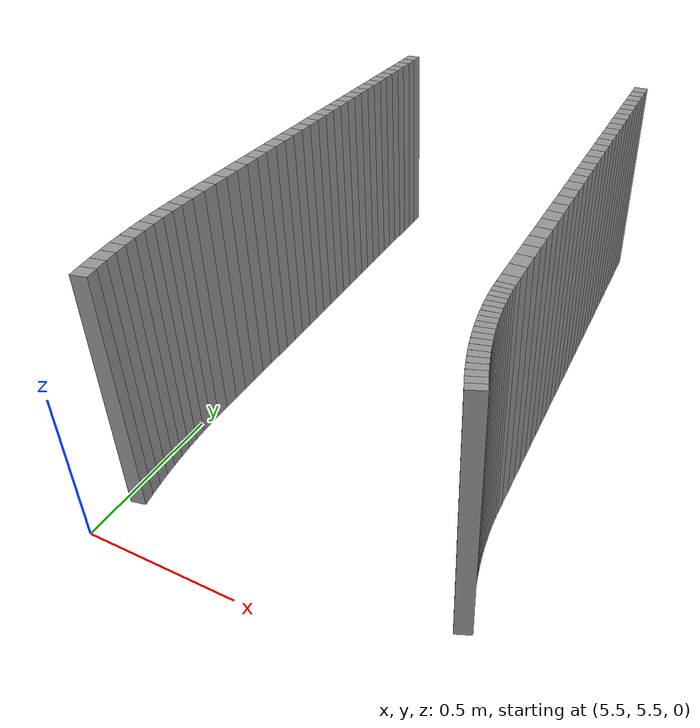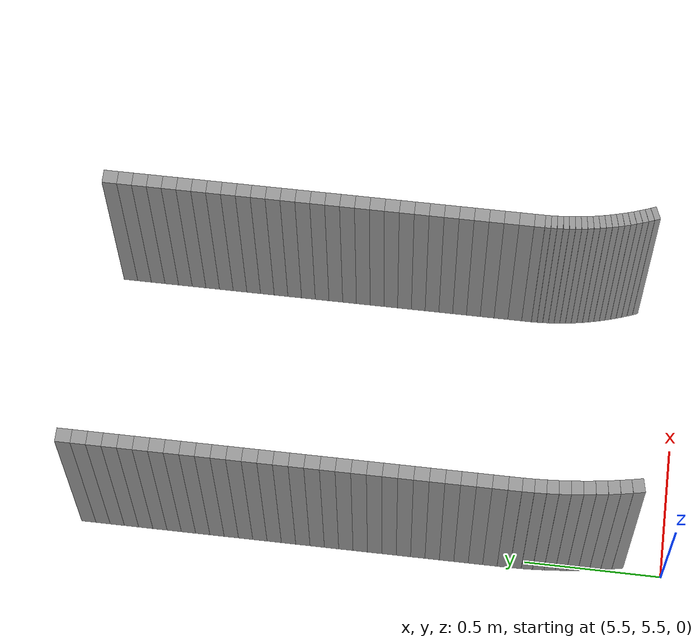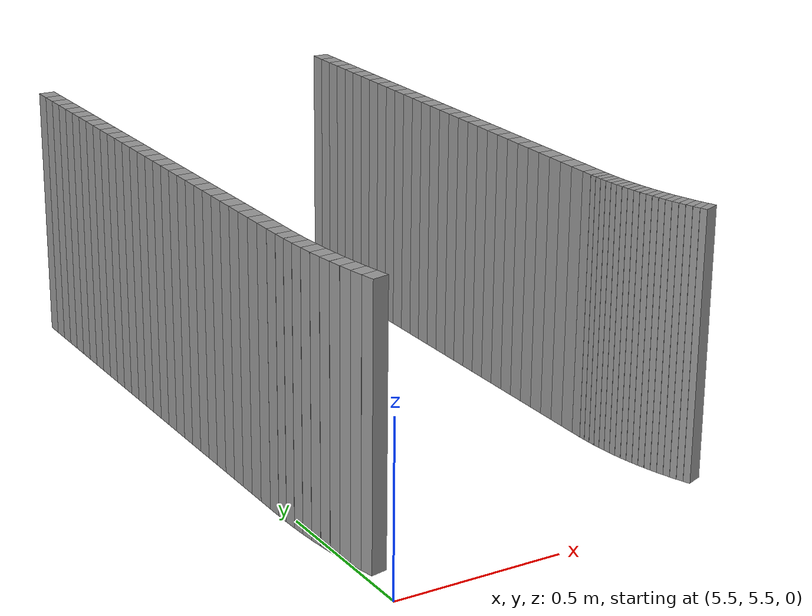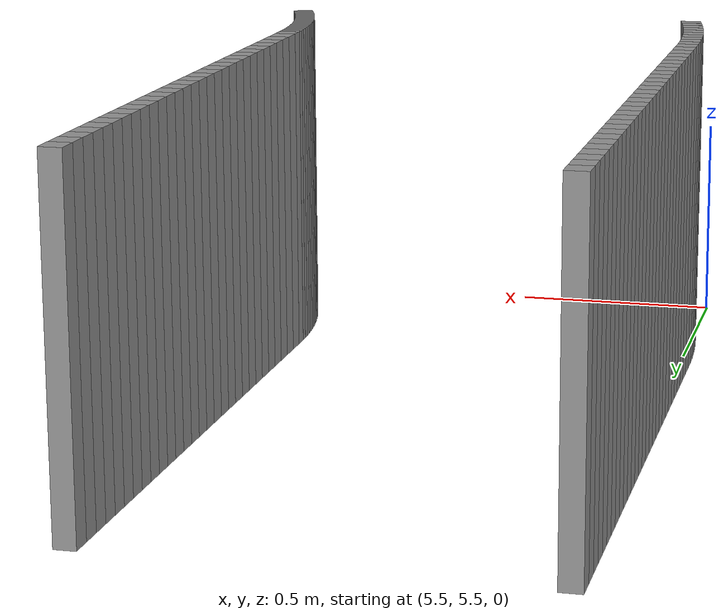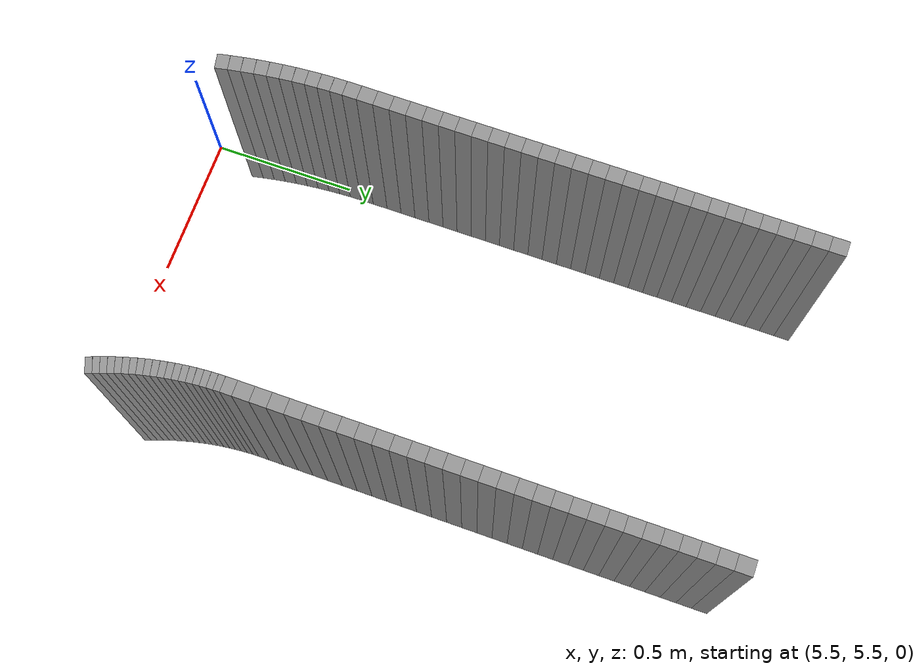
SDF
<sdf version="1.6">
 <model name="path_walls">
  <static>true</static>
  <model name="wall_left_325">
   <static>true</static>
   <pose>6.5 7.6234594384821115 0.40 0 0 -1.5707963267948966</pose>
   <link name="wall_link">
    <visual name="wall_visual">
     <geometry><box><size>0.053392469033882506 0.05 0.8</size></box></geometry>
     <material><ambient>0.3 0.3 0.3 1</ambient><diffuse>0.6 0.6 0.6 1</diffuse></material>
    </visual>
    <collision name="wall_collision">
     <geometry><box><size>0.053392469033882506 0.05 0.8</size></box></geometry>
    </collision>
   </link>
  </model>
  <model name="wall_left_326">
   <static>true</static>
   <pose>6.5 7.570066969448229 0.40 0 0 -1.5707963267948966</pose>
   <link name="wall_link">
    <visual name="wall_visual">
     <geometry><box><size>0.053392469033882506 0.05 0.8</size></box></geometry>
     <material><ambient>0.3 0.3 0.3 1</ambient><diffuse>0.6 0.6 0.6 1</diffuse></material>
    </visual>
    <collision name="wall_collision">
     <geometry><box><size>0.053392469033882506 0.05 0.8</size></box></geometry>
    </collision>
   </link>
  </model>
  <model name="wall_left_327">
   <static>true</static>
   <pose>6.5 7.5166745004143465 0.40 0 0 -1.5707963267948966</pose>
   <link name="wall_link">
    <visual name="wall_visual">
     <geometry><box><size>0.053392469033882506 0.05 0.8</size></box></geometry>
     <material><ambient>0.3 0.3 0.3 1</ambient><diffuse>0.6 0.6 0.6 1</diffuse></material>
    </visual>
    <collision name="wall_collision">
     <geometry><box><size>0.053392469033882506 0.05 0.8</size></box></geometry>
    </collision>
   </link>
  </model>
  <model name="wall_left_328">
   <static>true</static>
   <pose>6.5 7.463282031380464 0.40 0 0 -1.5707963267948966</pose>
   <link name="wall_link">
    <visual name="wall_visual">
     <geometry><box><size>0.05339246903388162 0.05 0.8</size></box></geometry>
     <material><ambient>0.3 0.3 0.3 1</ambient><diffuse>0.6 0.6 0.6 1</diffuse></material>
    </visual>
    <collision name="wall_collision">
     <geometry><box><size>0.05339246903388162 0.05 0.8</size></box></geometry>
    </collision>
   </link>
  </model>
  <model name="wall_left_329">
   <static>true</static>
   <pose>6.5 7.409889562346583 0.40 0 0 -1.5707963267948966</pose>
   <link name="wall_link">
    <visual name="wall_visual">
     <geometry><box><size>0.05339246903388162 0.05 0.8</size></box></geometry>
     <material><ambient>0.3 0.3 0.3 1</ambient><diffuse>0.6 0.6 0.6 1</diffuse></material>
    </visual>
    <collision name="wall_collision">
     <geometry><box><size>0.05339246903388162 0.05 0.8</size></box></geometry>
    </collision>
   </link>
  </model>
  <model name="wall_left_330">
   <static>true</static>
   <pose>6.5 7.356497093312701 0.40 0 0 -1.5707963267948966</pose>
   <link name="wall_link">
    <visual name="wall_visual">
     <geometry><box><size>0.053392469033883394 0.05 0.8</size></box></geometry>
     <material><ambient>0.3 0.3 0.3 1</ambient><diffuse>0.6 0.6 0.6 1</diffuse></material>
    </visual>
    <collision name="wall_collision">
     <geometry><box><size>0.053392469033883394 0.05 0.8</size></box></geometry>
    </collision>
   </link>
  </model>
  <model name="wall_left_331">
   <static>true</static>
   <pose>6.5 7.303104624278818 0.40 0 0 -1.5707963267948966</pose>
   <link name="wall_link">
    <visual name="wall_visual">
     <geometry><box><size>0.05339246903388073 0.05 0.8</size></box></geometry>
     <material><ambient>0.3 0.3 0.3 1</ambient><diffuse>0.6 0.6 0.6 1</diffuse></material>
    </visual>
    <collision name="wall_collision">
     <geometry><box><size>0.05339246903388073 0.05 0.8</size></box></geometry>
    </collision>
   </link>
  </model>
  <model name="wall_left_332">
   <static>true</static>
   <pose>6.5 7.249712155244937 0.40 0 0 -1.5707963267948966</pose>
   <link name="wall_link">
    <visual name="wall_visual">
     <geometry><box><size>0.053392469033882506 0.05 0.8</size></box></geometry>
     <material><ambient>0.3 0.3 0.3 1</ambient><diffuse>0.6 0.6 0.6 1</diffuse></material>
    </visual>
    <collision name="wall_collision">
     <geometry><box><size>0.053392469033882506 0.05 0.8</size></box></geometry>
    </collision>
   </link>
  </model>
  <model name="wall_left_333">
   <static>true</static>
   <pose>6.5 7.196319686211054 0.40 0 0 -1.5707963267948966</pose>
   <link name="wall_link">
    <visual name="wall_visual">
     <geometry><box><size>0.053392469033882506 0.05 0.8</size></box></geometry>
     <material><ambient>0.3 0.3 0.3 1</ambient><diffuse>0.6 0.6 0.6 1</diffuse></material>
    </visual>
    <collision name="wall_collision">
     <geometry><box><size>0.053392469033882506 0.05 0.8</size></box></geometry>
    </collision>
   </link>
  </model>
  <model name="wall_left_334">
   <static>true</static>
   <pose>6.5 7.142927217177171 0.40 0 0 -1.5707963267948966</pose>
   <link name="wall_link">
    <visual name="wall_visual">
     <geometry><box><size>0.053392469033883394 0.05 0.8</size></box></geometry>
     <material><ambient>0.3 0.3 0.3 1</ambient><diffuse>0.6 0.6 0.6 1</diffuse></material>
    </visual>
    <collision name="wall_collision">
     <geometry><box><size>0.053392469033883394 0.05 0.8</size></box></geometry>
    </collision>
   </link>
  </model>
  <model name="wall_left_335">
   <static>true</static>
   <pose>6.5 7.089534748143288 0.40 0 0 -1.5707963267948966</pose>
   <link name="wall_link">
    <visual name="wall_visual">
     <geometry><box><size>0.05339246903388162 0.05 0.8</size></box></geometry>
     <material><ambient>0.3 0.3 0.3 1</ambient><diffuse>0.6 0.6 0.6 1</diffuse></material>
    </visual>
    <collision name="wall_collision">
     <geometry><box><size>0.05339246903388162 0.05 0.8</size></box></geometry>
    </collision>
   </link>
  </model>
  <model name="wall_left_336">
   <static>true</static>
   <pose>6.5 7.0361422791094075 0.40 0 0 -1.5707963267948966</pose>
   <link name="wall_link">
    <visual name="wall_visual">
     <geometry><box><size>0.05339246903388162 0.05 0.8</size></box></geometry>
     <material><ambient>0.3 0.3 0.3 1</ambient><diffuse>0.6 0.6 0.6 1</diffuse></material>
    </visual>
    <collision name="wall_collision">
     <geometry><box><size>0.05339246903388162 0.05 0.8</size></box></geometry>
    </collision>
   </link>
  </model>
  <model name="wall_left_337">
   <static>true</static>
   <pose>6.5 6.982749810075525 0.40 0 0 -1.5707963267948966</pose>
   <link name="wall_link">
    <visual name="wall_visual">
     <geometry><box><size>0.053392469033882506 0.05 0.8</size></box></geometry>
     <material><ambient>0.3 0.3 0.3 1</ambient><diffuse>0.6 0.6 0.6 1</diffuse></material>
    </visual>
    <collision name="wall_collision">
     <geometry><box><size>0.053392469033882506 0.05 0.8</size></box></geometry>
    </collision>
   </link>
  </model>
  <model name="wall_left_338">
   <static>true</static>
   <pose>6.5 6.9293573410416425 0.40 0 0 -1.5707963267948966</pose>
   <link name="wall_link">
    <visual name="wall_visual">
     <geometry><box><size>0.05339246903388162 0.05 0.8</size></box></geometry>
     <material><ambient>0.3 0.3 0.3 1</ambient><diffuse>0.6 0.6 0.6 1</diffuse></material>
    </visual>
    <collision name="wall_collision">
     <geometry><box><size>0.05339246903388162 0.05 0.8</size></box></geometry>
    </collision>
   </link>
  </model>
  <model name="wall_left_339">
   <static>true</static>
   <pose>6.5 6.875964872007761 0.40 0 0 -1.5707963267948966</pose>
   <link name="wall_link">
    <visual name="wall_visual">
     <geometry><box><size>0.053392469033882506 0.05 0.8</size></box></geometry>
     <material><ambient>0.3 0.3 0.3 1</ambient><diffuse>0.6 0.6 0.6 1</diffuse></material>
    </visual>
    <collision name="wall_collision">
     <geometry><box><size>0.053392469033882506 0.05 0.8</size></box></geometry>
    </collision>
   </link>
  </model>
  <model name="wall_left_340">
   <static>true</static>
   <pose>6.5 6.822572402973878 0.40 0 0 -1.5707963267948966</pose>
   <link name="wall_link">
    <visual name="wall_visual">
     <geometry><box><size>0.053392469033882506 0.05 0.8</size></box></geometry>
     <material><ambient>0.3 0.3 0.3 1</ambient><diffuse>0.6 0.6 0.6 1</diffuse></material>
    </visual>
    <collision name="wall_collision">
     <geometry><box><size>0.053392469033882506 0.05 0.8</size></box></geometry>
    </collision>
   </link>
  </model>
  <model name="wall_left_341">
   <static>true</static>
   <pose>6.5 6.769179933939996 0.40 0 0 -1.5707963267948966</pose>
   <link name="wall_link">
    <visual name="wall_visual">
     <geometry><box><size>0.053392469033882506 0.05 0.8</size></box></geometry>
     <material><ambient>0.3 0.3 0.3 1</ambient><diffuse>0.6 0.6 0.6 1</diffuse></material>
    </visual>
    <collision name="wall_collision">
     <geometry><box><size>0.053392469033882506 0.05 0.8</size></box></geometry>
    </collision>
   </link>
  </model>
  <model name="wall_left_342">
   <static>true</static>
   <pose>6.5 6.715787464906113 0.40 0 0 -1.5707963267948966</pose>
   <link name="wall_link">
    <visual name="wall_visual">
     <geometry><box><size>0.053392469033882506 0.05 0.8</size></box></geometry>
     <material><ambient>0.3 0.3 0.3 1</ambient><diffuse>0.6 0.6 0.6 1</diffuse></material>
    </visual>
    <collision name="wall_collision">
     <geometry><box><size>0.053392469033882506 0.05 0.8</size></box></geometry>
    </collision>
   </link>
  </model>
  <model name="wall_left_343">
   <static>true</static>
   <pose>6.5 6.662394995872232 0.40 0 0 -1.5707963267948966</pose>
   <link name="wall_link">
    <visual name="wall_visual">
     <geometry><box><size>0.05339246903388162 0.05 0.8</size></box></geometry>
     <material><ambient>0.3 0.3 0.3 1</ambient><diffuse>0.6 0.6 0.6 1</diffuse></material>
    </visual>
    <collision name="wall_collision">
     <geometry><box><size>0.05339246903388162 0.05 0.8</size></box></geometry>
    </collision>
   </link>
  </model>
  <model name="wall_left_344">
   <static>true</static>
   <pose>6.5 6.609002526838349 0.40 0 0 -1.5707963267948966</pose>
   <link name="wall_link">
    <visual name="wall_visual">
     <geometry><box><size>0.053392469033882506 0.05 0.8</size></box></geometry>
     <material><ambient>0.3 0.3 0.3 1</ambient><diffuse>0.6 0.6 0.6 1</diffuse></material>
    </visual>
    <collision name="wall_collision">
     <geometry><box><size>0.053392469033882506 0.05 0.8</size></box></geometry>
    </collision>
   </link>
  </model>
  <model name="wall_left_345">
   <static>true</static>
   <pose>6.5 6.555610057804467 0.40 0 0 -1.5707963267948966</pose>
   <link name="wall_link">
    <visual name="wall_visual">
     <geometry><box><size>0.053392469033882506 0.05 0.8</size></box></geometry>
     <material><ambient>0.3 0.3 0.3 1</ambient><diffuse>0.6 0.6 0.6 1</diffuse></material>
    </visual>
    <collision name="wall_collision">
     <geometry><box><size>0.053392469033882506 0.05 0.8</size></box></geometry>
    </collision>
   </link>
  </model>
  <model name="wall_left_346">
   <static>true</static>
   <pose>6.5 6.502217588770584 0.40 0 0 -1.5707963267948966</pose>
   <link name="wall_link">
    <visual name="wall_visual">
     <geometry><box><size>0.053392469033882506 0.05 0.8</size></box></geometry>
     <material><ambient>0.3 0.3 0.3 1</ambient><diffuse>0.6 0.6 0.6 1</diffuse></material>
    </visual>
    <collision name="wall_collision">
     <geometry><box><size>0.053392469033882506 0.05 0.8</size></box></geometry>
    </collision>
   </link>
  </model>
  <model name="wall_left_347">
   <static>true</static>
   <pose>6.5 6.448825119736702 0.40 0 0 -1.5707963267948966</pose>
   <link name="wall_link">
    <visual name="wall_visual">
     <geometry><box><size>0.05339246903388162 0.05 0.8</size></box></geometry>
     <material><ambient>0.3 0.3 0.3 1</ambient><diffuse>0.6 0.6 0.6 1</diffuse></material>
    </visual>
    <collision name="wall_collision">
     <geometry><box><size>0.05339246903388162 0.05 0.8</size></box></geometry>
    </collision>
   </link>
  </model>
  <model name="wall_left_348">
   <static>true</static>
   <pose>6.5 6.39543265070282 0.40 0 0 -1.5707963267948966</pose>
   <link name="wall_link">
    <visual name="wall_visual">
     <geometry><box><size>0.053392469033882506 0.05 0.8</size></box></geometry>
     <material><ambient>0.3 0.3 0.3 1</ambient><diffuse>0.6 0.6 0.6 1</diffuse></material>
    </visual>
    <collision name="wall_collision">
     <geometry><box><size>0.053392469033882506 0.05 0.8</size></box></geometry>
    </collision>
   </link>
  </model>
  <model name="wall_left_349">
   <static>true</static>
   <pose>6.5 6.342040181668938 0.40 0 0 -1.5707963267948966</pose>
   <link name="wall_link">
    <visual name="wall_visual">
     <geometry><box><size>0.053392469033882506 0.05 0.8</size></box></geometry>
     <material><ambient>0.3 0.3 0.3 1</ambient><diffuse>0.6 0.6 0.6 1</diffuse></material>
    </visual>
    <collision name="wall_collision">
     <geometry><box><size>0.053392469033882506 0.05 0.8</size></box></geometry>
    </collision>
   </link>
  </model>
  <model name="wall_left_350">
   <static>true</static>
   <pose>6.5 6.288647712635056 0.40 0 0 -1.5707963267948966</pose>
   <link name="wall_link">
    <visual name="wall_visual">
     <geometry><box><size>0.05339246903388162 0.05 0.8</size></box></geometry>
     <material><ambient>0.3 0.3 0.3 1</ambient><diffuse>0.6 0.6 0.6 1</diffuse></material>
    </visual>
    <collision name="wall_collision">
     <geometry><box><size>0.05339246903388162 0.05 0.8</size></box></geometry>
    </collision>
   </link>
  </model>
  <model name="wall_left_351">
   <static>true</static>
   <pose>6.5 6.2352552436011734 0.40 0 0 -1.5707963267948966</pose>
   <link name="wall_link">
    <visual name="wall_visual">
     <geometry><box><size>0.053392469033882506 0.05 0.8</size></box></geometry>
     <material><ambient>0.3 0.3 0.3 1</ambient><diffuse>0.6 0.6 0.6 1</diffuse></material>
    </visual>
    <collision name="wall_collision">
     <geometry><box><size>0.053392469033882506 0.05 0.8</size></box></geometry>
    </collision>
   </link>
  </model>
  <model name="wall_left_352">
   <static>true</static>
   <pose>6.5 6.181862774567291 0.40 0 0 -1.5707963267948966</pose>
   <link name="wall_link">
    <visual name="wall_visual">
     <geometry><box><size>0.053392469033882506 0.05 0.8</size></box></geometry>
     <material><ambient>0.3 0.3 0.3 1</ambient><diffuse>0.6 0.6 0.6 1</diffuse></material>
    </visual>
    <collision name="wall_collision">
     <geometry><box><size>0.053392469033882506 0.05 0.8</size></box></geometry>
    </collision>
   </link>
  </model>
  <model name="wall_left_353">
   <static>true</static>
   <pose>6.5 6.128470305533408 0.40 0 0 -1.5707963267948966</pose>
   <link name="wall_link">
    <visual name="wall_visual">
     <geometry><box><size>0.053392469033882506 0.05 0.8</size></box></geometry>
     <material><ambient>0.3 0.3 0.3 1</ambient><diffuse>0.6 0.6 0.6 1</diffuse></material>
    </visual>
    <collision name="wall_collision">
     <geometry><box><size>0.053392469033882506 0.05 0.8</size></box></geometry>
    </collision>
   </link>
  </model>
  <model name="wall_left_354">
   <static>true</static>
   <pose>6.500065481804878 6.0830823517582795 0.40 0 0 -1.567293089019134</pose>
   <link name="wall_link">
    <visual name="wall_visual">
     <geometry><box><size>0.037383667914942464 0.05 0.8</size></box></geometry>
     <material><ambient>0.3 0.3 0.3 1</ambient><diffuse>0.6 0.6 0.6 1</diffuse></material>
    </visual>
    <collision name="wall_collision">
     <geometry><box><size>0.037383667914942464 0.05 0.8</size></box></geometry>
    </collision>
   </link>
  </model>
  <model name="wall_left_355">
   <static>true</static>
   <pose>6.500343448605288 6.053705541042753 0.40 0 0 -1.550912828987368</pose>
   <link name="wall_link">
    <visual name="wall_visual">
     <geometry><box><size>0.021374407998822908 0.05 0.8</size></box></geometry>
     <material><ambient>0.3 0.3 0.3 1</ambient><diffuse>0.6 0.6 0.6 1</diffuse></material>
    </visual>
    <collision name="wall_collision">
     <geometry><box><size>0.021374407998822908 0.05 0.8</size></box></geometry>
    </collision>
   </link>
  </model>
  <model name="wall_left_356">
   <static>true</static>
   <pose>6.500980819587967 6.032341694919093 0.40 0 0 -1.531029331179839</pose>
   <link name="wall_link">
    <visual name="wall_visual">
     <geometry><box><size>0.021374407998868816 0.05 0.8</size></box></geometry>
     <material><ambient>0.3 0.3 0.3 1</ambient><diffuse>0.6 0.6 0.6 1</diffuse></material>
    </visual>
    <collision name="wall_collision">
     <geometry><box><size>0.021374407998868816 0.05 0.8</size></box></geometry>
    </collision>
   </link>
  </model>
  <model name="wall_left_357">
   <static>true</static>
   <pose>6.502042824579254 6.0109947441212945 0.40 0 0 -1.511145833372304</pose>
   <link name="wall_link">
    <visual name="wall_visual">
     <geometry><box><size>0.021374407998829927 0.05 0.8</size></box></geometry>
     <material><ambient>0.3 0.3 0.3 1</ambient><diffuse>0.6 0.6 0.6 1</diffuse></material>
    </visual>
    <collision name="wall_collision">
     <geometry><box><size>0.021374407998829927 0.05 0.8</size></box></geometry>
    </collision>
   </link>
  </model>
  <model name="wall_left_358">
   <static>true</static>
   <pose>6.50352904372561 5.989673127962718 0.40 0 0 -1.4912623355647376</pose>
   <link name="wall_link">
    <visual name="wall_visual">
     <geometry><box><size>0.021374407998850476 0.05 0.8</size></box></geometry>
     <material><ambient>0.3 0.3 0.3 1</ambient><diffuse>0.6 0.6 0.6 1</diffuse></material>
    </visual>
    <collision name="wall_collision">
     <geometry><box><size>0.021374407998850476 0.05 0.8</size></box></geometry>
    </collision>
   </link>
  </model>
  <model name="wall_left_359">
   <static>true</static>
   <pose>6.505438889464474 5.968385275740879 0.40 0 0 -1.4713788377572405</pose>
   <link name="wall_link">
    <visual name="wall_visual">
     <geometry><box><size>0.021374407998847045 0.05 0.8</size></box></geometry>
     <material><ambient>0.3 0.3 0.3 1</ambient><diffuse>0.6 0.6 0.6 1</diffuse></material>
    </visual>
    <collision name="wall_collision">
     <geometry><box><size>0.021374407998847045 0.05 0.8</size></box></geometry>
    </collision>
   </link>
  </model>
  <model name="wall_left_360">
   <static>true</static>
   <pose>6.5077716067565525 5.9471396034050805 0.40 0 0 -1.451495339949677</pose>
   <link name="wall_link">
    <visual name="wall_visual">
     <geometry><box><size>0.021374407998840397 0.05 0.8</size></box></geometry>
     <material><ambient>0.3 0.3 0.3 1</ambient><diffuse>0.6 0.6 0.6 1</diffuse></material>
    </visual>
    <collision name="wall_collision">
     <geometry><box><size>0.021374407998840397 0.05 0.8</size></box></geometry>
    </collision>
   </link>
  </model>
  <model name="wall_left_361">
   <static>true</static>
   <pose>6.510526273384318 5.925944510229172 0.40 0 0 -1.4316118421422448</pose>
   <link name="wall_link">
    <visual name="wall_visual">
     <geometry><box><size>0.02137440799887782 0.05 0.8</size></box></geometry>
     <material><ambient>0.3 0.3 0.3 1</ambient><diffuse>0.6 0.6 0.6 1</diffuse></material>
    </visual>
    <collision name="wall_collision">
     <geometry><box><size>0.02137440799887782 0.05 0.8</size></box></geometry>
    </collision>
   </link>
  </model>
  <model name="wall_left_362">
   <static>true</static>
   <pose>6.513701800316599 5.904808375491065 0.40 0 0 -1.4117283443346906</pose>
   <link name="wall_link">
    <visual name="wall_visual">
     <geometry><box><size>0.021374407998819046 0.05 0.8</size></box></geometry>
     <material><ambient>0.3 0.3 0.3 1</ambient><diffuse>0.6 0.6 0.6 1</diffuse></material>
    </visual>
    <collision name="wall_collision">
     <geometry><box><size>0.021374407998819046 0.05 0.8</size></box></geometry>
    </collision>
   </link>
  </model>
  <model name="wall_left_363">
   <static>true</static>
   <pose>6.517296932139116 5.883739555159989 0.40 0 0 -1.3918448465270827</pose>
   <link name="wall_link">
    <visual name="wall_visual">
     <geometry><box><size>0.02137440799884817 0.05 0.8</size></box></geometry>
     <material><ambient>0.3 0.3 0.3 1</ambient><diffuse>0.6 0.6 0.6 1</diffuse></material>
    </visual>
    <collision name="wall_collision">
     <geometry><box><size>0.02137440799884817 0.05 0.8</size></box></geometry>
    </collision>
   </link>
  </model>
  <model name="wall_left_364">
   <static>true</static>
   <pose>6.521310247550808 5.862746378593032 0.40 0 0 -1.3719613487195845</pose>
   <link name="wall_link">
    <visual name="wall_visual">
     <geometry><box><size>0.021374407998851003 0.05 0.8</size></box></geometry>
     <material><ambient>0.3 0.3 0.3 1</ambient><diffuse>0.6 0.6 0.6 1</diffuse></material>
    </visual>
    <collision name="wall_collision">
     <geometry><box><size>0.021374407998851003 0.05 0.8</size></box></geometry>
    </collision>
   </link>
  </model>
  <model name="wall_left_365">
   <static>true</static>
   <pose>6.525740159925709 5.841837145242289 0.40 0 0 -1.3520778509120333</pose>
   <link name="wall_link">
    <visual name="wall_visual">
     <geometry><box><size>0.021374407998849466 0.05 0.8</size></box></geometry>
     <material><ambient>0.3 0.3 0.3 1</ambient><diffuse>0.6 0.6 0.6 1</diffuse></material>
    </visual>
    <collision name="wall_collision">
     <geometry><box><size>0.021374407998849466 0.05 0.8</size></box></geometry>
    </collision>
   </link>
  </model>
  <model name="wall_left_366">
   <static>true</static>
   <pose>6.530584917940223 5.821020121373692 0.40 0 0 -1.3321943531045801</pose>
   <link name="wall_link">
    <visual name="wall_visual">
     <geometry><box><size>0.021374407998840564 0.05 0.8</size></box></geometry>
     <material><ambient>0.3 0.3 0.3 1</ambient><diffuse>0.6 0.6 0.6 1</diffuse></material>
    </visual>
    <collision name="wall_collision">
     <geometry><box><size>0.021374407998840564 0.05 0.8</size></box></geometry>
    </collision>
   </link>
  </model>
  <model name="wall_left_367">
   <static>true</static>
   <pose>6.535842606265488 5.800303536799024 0.40 0 0 -1.3123108552970317</pose>
   <link name="wall_link">
    <visual name="wall_visual">
     <geometry><box><size>0.021374407998851656 0.05 0.8</size></box></geometry>
     <material><ambient>0.3 0.3 0.3 1</ambient><diffuse>0.6 0.6 0.6 1</diffuse></material>
    </visual>
    <collision name="wall_collision">
     <geometry><box><size>0.021374407998851656 0.05 0.8</size></box></geometry>
    </collision>
   </link>
  </model>
  <model name="wall_left_368">
   <static>true</static>
   <pose>6.54151114632459 5.779695581622359 0.40 0 0 -1.2924273574894143</pose>
   <link name="wall_link">
    <visual name="wall_visual">
     <geometry><box><size>0.021374407998844394 0.05 0.8</size></box></geometry>
     <material><ambient>0.3 0.3 0.3 1</ambient><diffuse>0.6 0.6 0.6 1</diffuse></material>
    </visual>
    <collision name="wall_collision">
     <geometry><box><size>0.021374407998844394 0.05 0.8</size></box></geometry>
    </collision>
   </link>
  </model>
  <model name="wall_left_369">
   <static>true</static>
   <pose>6.547588297114289 5.759204403002174 0.40 0 0 -1.2725438596819816</pose>
   <link name="wall_link">
    <visual name="wall_visual">
     <geometry><box><size>0.02137440799885349 0.05 0.8</size></box></geometry>
     <material><ambient>0.3 0.3 0.3 1</ambient><diffuse>0.6 0.6 0.6 1</diffuse></material>
    </visual>
    <collision name="wall_collision">
     <geometry><box><size>0.02137440799885349 0.05 0.8</size></box></geometry>
    </collision>
   </link>
  </model>
  <model name="wall_left_370">
   <static>true</static>
   <pose>6.554071656090999 5.738838101930449 0.40 0 0 -1.2526603618744077</pose>
   <link name="wall_link">
    <visual name="wall_visual">
     <geometry><box><size>0.021374407998840203 0.05 0.8</size></box></geometry>
     <material><ambient>0.3 0.3 0.3 1</ambient><diffuse>0.6 0.6 0.6 1</diffuse></material>
    </visual>
    <collision name="wall_collision">
     <geometry><box><size>0.021374407998840203 0.05 0.8</size></box></geometry>
    </collision>
   </link>
  </model>
  <model name="wall_left_371">
   <static>true</static>
   <pose>6.560958660120598 5.718604730030021 0.40 0 0 -1.2327768640668997</pose>
   <link name="wall_link">
    <visual name="wall_visual">
     <geometry><box><size>0.02137440799884221 0.05 0.8</size></box></geometry>
     <material><ambient>0.3 0.3 0.3 1</ambient><diffuse>0.6 0.6 0.6 1</diffuse></material>
    </visual>
    <collision name="wall_collision">
     <geometry><box><size>0.02137440799884221 0.05 0.8</size></box></geometry>
    </collision>
   </link>
  </model>
  <model name="wall_left_372">
   <static>true</static>
   <pose>6.5682465864917505 5.698512286371432 0.40 0 0 -1.2128933662593306</pose>
   <link name="wall_link">
    <visual name="wall_visual">
     <geometry><box><size>0.02137440799884785 0.05 0.8</size></box></geometry>
     <material><ambient>0.3 0.3 0.3 1</ambient><diffuse>0.6 0.6 0.6 1</diffuse></material>
    </visual>
    <collision name="wall_collision">
     <geometry><box><size>0.02137440799884785 0.05 0.8</size></box></geometry>
    </collision>
   </link>
  </model>
  <model name="wall_left_373">
   <static>true</static>
   <pose>6.575932553992293 5.6785687143105985 0.40 0 0 -1.1930098684518102</pose>
   <link name="wall_link">
    <visual name="wall_visual">
     <geometry><box><size>0.021374407998848512 0.05 0.8</size></box></geometry>
     <material><ambient>0.3 0.3 0.3 1</ambient><diffuse>0.6 0.6 0.6 1</diffuse></material>
    </visual>
    <collision name="wall_collision">
     <geometry><box><size>0.021374407998848512 0.05 0.8</size></box></geometry>
    </collision>
   </link>
  </model>
  <model name="wall_right_325">
   <static>true</static>
   <pose>5.5 7.6234594384821115 0.40 0 0 -1.5707963267948966</pose>
   <link name="wall_link">
    <visual name="wall_visual">
     <geometry><box><size>0.053392469033882506 0.05 0.8</size></box></geometry>
     <material><ambient>0.3 0.3 0.3 1</ambient><diffuse>0.6 0.6 0.6 1</diffuse></material>
    </visual>
    <collision name="wall_collision">
     <geometry><box><size>0.053392469033882506 0.05 0.8</size></box></geometry>
    </collision>
   </link>
  </model>
  <model name="wall_right_326">
   <static>true</static>
   <pose>5.5 7.570066969448229 0.40 0 0 -1.5707963267948966</pose>
   <link name="wall_link">
    <visual name="wall_visual">
     <geometry><box><size>0.053392469033882506 0.05 0.8</size></box></geometry>
     <material><ambient>0.3 0.3 0.3 1</ambient><diffuse>0.6 0.6 0.6 1</diffuse></material>
    </visual>
    <collision name="wall_collision">
     <geometry><box><size>0.053392469033882506 0.05 0.8</size></box></geometry>
    </collision>
   </link>
  </model>
  <model name="wall_right_327">
   <static>true</static>
   <pose>5.5 7.5166745004143465 0.40 0 0 -1.5707963267948966</pose>
   <link name="wall_link">
    <visual name="wall_visual">
     <geometry><box><size>0.053392469033882506 0.05 0.8</size></box></geometry>
     <material><ambient>0.3 0.3 0.3 1</ambient><diffuse>0.6 0.6 0.6 1</diffuse></material>
    </visual>
    <collision name="wall_collision">
     <geometry><box><size>0.053392469033882506 0.05 0.8</size></box></geometry>
    </collision>
   </link>
  </model>
  <model name="wall_right_328">
   <static>true</static>
   <pose>5.5 7.463282031380464 0.40 0 0 -1.5707963267948966</pose>
   <link name="wall_link">
    <visual name="wall_visual">
     <geometry><box><size>0.05339246903388162 0.05 0.8</size></box></geometry>
     <material><ambient>0.3 0.3 0.3 1</ambient><diffuse>0.6 0.6 0.6 1</diffuse></material>
    </visual>
    <collision name="wall_collision">
     <geometry><box><size>0.05339246903388162 0.05 0.8</size></box></geometry>
    </collision>
   </link>
  </model>
  <model name="wall_right_329">
   <static>true</static>
   <pose>5.5 7.409889562346583 0.40 0 0 -1.5707963267948966</pose>
   <link name="wall_link">
    <visual name="wall_visual">
     <geometry><box><size>0.05339246903388162 0.05 0.8</size></box></geometry>
     <material><ambient>0.3 0.3 0.3 1</ambient><diffuse>0.6 0.6 0.6 1</diffuse></material>
    </visual>
    <collision name="wall_collision">
     <geometry><box><size>0.05339246903388162 0.05 0.8</size></box></geometry>
    </collision>
   </link>
  </model>
  <model name="wall_right_330">
   <static>true</static>
   <pose>5.5 7.356497093312701 0.40 0 0 -1.5707963267948966</pose>
   <link name="wall_link">
    <visual name="wall_visual">
     <geometry><box><size>0.053392469033883394 0.05 0.8</size></box></geometry>
     <material><ambient>0.3 0.3 0.3 1</ambient><diffuse>0.6 0.6 0.6 1</diffuse></material>
    </visual>
    <collision name="wall_collision">
     <geometry><box><size>0.053392469033883394 0.05 0.8</size></box></geometry>
    </collision>
   </link>
  </model>
  <model name="wall_right_331">
   <static>true</static>
   <pose>5.5 7.303104624278818 0.40 0 0 -1.5707963267948966</pose>
   <link name="wall_link">
    <visual name="wall_visual">
     <geometry><box><size>0.05339246903388073 0.05 0.8</size></box></geometry>
     <material><ambient>0.3 0.3 0.3 1</ambient><diffuse>0.6 0.6 0.6 1</diffuse></material>
    </visual>
    <collision name="wall_collision">
     <geometry><box><size>0.05339246903388073 0.05 0.8</size></box></geometry>
    </collision>
   </link>
  </model>
  <model name="wall_right_332">
   <static>true</static>
   <pose>5.5 7.249712155244937 0.40 0 0 -1.5707963267948966</pose>
   <link name="wall_link">
    <visual name="wall_visual">
     <geometry><box><size>0.053392469033882506 0.05 0.8</size></box></geometry>
     <material><ambient>0.3 0.3 0.3 1</ambient><diffuse>0.6 0.6 0.6 1</diffuse></material>
    </visual>
    <collision name="wall_collision">
     <geometry><box><size>0.053392469033882506 0.05 0.8</size></box></geometry>
    </collision>
   </link>
  </model>
  <model name="wall_right_333">
   <static>true</static>
   <pose>5.5 7.196319686211054 0.40 0 0 -1.5707963267948966</pose>
   <link name="wall_link">
    <visual name="wall_visual">
     <geometry><box><size>0.053392469033882506 0.05 0.8</size></box></geometry>
     <material><ambient>0.3 0.3 0.3 1</ambient><diffuse>0.6 0.6 0.6 1</diffuse></material>
    </visual>
    <collision name="wall_collision">
     <geometry><box><size>0.053392469033882506 0.05 0.8</size></box></geometry>
    </collision>
   </link>
  </model>
  <model name="wall_right_334">
   <static>true</static>
   <pose>5.5 7.142927217177171 0.40 0 0 -1.5707963267948966</pose>
   <link name="wall_link">
    <visual name="wall_visual">
     <geometry><box><size>0.053392469033883394 0.05 0.8</size></box></geometry>
     <material><ambient>0.3 0.3 0.3 1</ambient><diffuse>0.6 0.6 0.6 1</diffuse></material>
    </visual>
    <collision name="wall_collision">
     <geometry><box><size>0.053392469033883394 0.05 0.8</size></box></geometry>
    </collision>
   </link>
  </model>
  <model name="wall_right_335">
   <static>true</static>
   <pose>5.5 7.089534748143288 0.40 0 0 -1.5707963267948966</pose>
   <link name="wall_link">
    <visual name="wall_visual">
     <geometry><box><size>0.05339246903388162 0.05 0.8</size></box></geometry>
     <material><ambient>0.3 0.3 0.3 1</ambient><diffuse>0.6 0.6 0.6 1</diffuse></material>
    </visual>
    <collision name="wall_collision">
     <geometry><box><size>0.05339246903388162 0.05 0.8</size></box></geometry>
    </collision>
   </link>
  </model>
  <model name="wall_right_336">
   <static>true</static>
   <pose>5.5 7.0361422791094075 0.40 0 0 -1.5707963267948966</pose>
   <link name="wall_link">
    <visual name="wall_visual">
     <geometry><box><size>0.05339246903388162 0.05 0.8</size></box></geometry>
     <material><ambient>0.3 0.3 0.3 1</ambient><diffuse>0.6 0.6 0.6 1</diffuse></material>
    </visual>
    <collision name="wall_collision">
     <geometry><box><size>0.05339246903388162 0.05 0.8</size></box></geometry>
    </collision>
   </link>
  </model>
  <model name="wall_right_337">
   <static>true</static>
   <pose>5.5 6.982749810075525 0.40 0 0 -1.5707963267948966</pose>
   <link name="wall_link">
    <visual name="wall_visual">
     <geometry><box><size>0.053392469033882506 0.05 0.8</size></box></geometry>
     <material><ambient>0.3 0.3 0.3 1</ambient><diffuse>0.6 0.6 0.6 1</diffuse></material>
    </visual>
    <collision name="wall_collision">
     <geometry><box><size>0.053392469033882506 0.05 0.8</size></box></geometry>
    </collision>
   </link>
  </model>
  <model name="wall_right_338">
   <static>true</static>
   <pose>5.5 6.9293573410416425 0.40 0 0 -1.5707963267948966</pose>
   <link name="wall_link">
    <visual name="wall_visual">
     <geometry><box><size>0.05339246903388162 0.05 0.8</size></box></geometry>
     <material><ambient>0.3 0.3 0.3 1</ambient><diffuse>0.6 0.6 0.6 1</diffuse></material>
    </visual>
    <collision name="wall_collision">
     <geometry><box><size>0.05339246903388162 0.05 0.8</size></box></geometry>
    </collision>
   </link>
  </model>
  <model name="wall_right_339">
   <static>true</static>
   <pose>5.5 6.875964872007761 0.40 0 0 -1.5707963267948966</pose>
   <link name="wall_link">
    <visual name="wall_visual">
     <geometry><box><size>0.053392469033882506 0.05 0.8</size></box></geometry>
     <material><ambient>0.3 0.3 0.3 1</ambient><diffuse>0.6 0.6 0.6 1</diffuse></material>
    </visual>
    <collision name="wall_collision">
     <geometry><box><size>0.053392469033882506 0.05 0.8</size></box></geometry>
    </collision>
   </link>
  </model>
  <model name="wall_right_340">
   <static>true</static>
   <pose>5.5 6.822572402973878 0.40 0 0 -1.5707963267948966</pose>
   <link name="wall_link">
    <visual name="wall_visual">
     <geometry><box><size>0.053392469033882506 0.05 0.8</size></box></geometry>
     <material><ambient>0.3 0.3 0.3 1</ambient><diffuse>0.6 0.6 0.6 1</diffuse></material>
    </visual>
    <collision name="wall_collision">
     <geometry><box><size>0.053392469033882506 0.05 0.8</size></box></geometry>
    </collision>
   </link>
  </model>
  <model name="wall_right_341">
   <static>true</static>
   <pose>5.5 6.769179933939996 0.40 0 0 -1.5707963267948966</pose>
   <link name="wall_link">
    <visual name="wall_visual">
     <geometry><box><size>0.053392469033882506 0.05 0.8</size></box></geometry>
     <material><ambient>0.3 0.3 0.3 1</ambient><diffuse>0.6 0.6 0.6 1</diffuse></material>
    </visual>
    <collision name="wall_collision">
     <geometry><box><size>0.053392469033882506 0.05 0.8</size></box></geometry>
    </collision>
   </link>
  </model>
  <model name="wall_right_342">
   <static>true</static>
   <pose>5.5 6.715787464906113 0.40 0 0 -1.5707963267948966</pose>
   <link name="wall_link">
    <visual name="wall_visual">
     <geometry><box><size>0.053392469033882506 0.05 0.8</size></box></geometry>
     <material><ambient>0.3 0.3 0.3 1</ambient><diffuse>0.6 0.6 0.6 1</diffuse></material>
    </visual>
    <collision name="wall_collision">
     <geometry><box><size>0.053392469033882506 0.05 0.8</size></box></geometry>
    </collision>
   </link>
  </model>
  <model name="wall_right_343">
   <static>true</static>
   <pose>5.5 6.662394995872232 0.40 0 0 -1.5707963267948966</pose>
   <link name="wall_link">
    <visual name="wall_visual">
     <geometry><box><size>0.05339246903388162 0.05 0.8</size></box></geometry>
     <material><ambient>0.3 0.3 0.3 1</ambient><diffuse>0.6 0.6 0.6 1</diffuse></material>
    </visual>
    <collision name="wall_collision">
     <geometry><box><size>0.05339246903388162 0.05 0.8</size></box></geometry>
    </collision>
   </link>
  </model>
  <model name="wall_right_344">
   <static>true</static>
   <pose>5.5 6.609002526838349 0.40 0 0 -1.5707963267948966</pose>
   <link name="wall_link">
    <visual name="wall_visual">
     <geometry><box><size>0.053392469033882506 0.05 0.8</size></box></geometry>
     <material><ambient>0.3 0.3 0.3 1</ambient><diffuse>0.6 0.6 0.6 1</diffuse></material>
    </visual>
    <collision name="wall_collision">
     <geometry><box><size>0.053392469033882506 0.05 0.8</size></box></geometry>
    </collision>
   </link>
  </model>
  <model name="wall_right_345">
   <static>true</static>
   <pose>5.5 6.555610057804467 0.40 0 0 -1.5707963267948966</pose>
   <link name="wall_link">
    <visual name="wall_visual">
     <geometry><box><size>0.053392469033882506 0.05 0.8</size></box></geometry>
     <material><ambient>0.3 0.3 0.3 1</ambient><diffuse>0.6 0.6 0.6 1</diffuse></material>
    </visual>
    <collision name="wall_collision">
     <geometry><box><size>0.053392469033882506 0.05 0.8</size></box></geometry>
    </collision>
   </link>
  </model>
  <model name="wall_right_346">
   <static>true</static>
   <pose>5.5 6.502217588770584 0.40 0 0 -1.5707963267948966</pose>
   <link name="wall_link">
    <visual name="wall_visual">
     <geometry><box><size>0.053392469033882506 0.05 0.8</size></box></geometry>
     <material><ambient>0.3 0.3 0.3 1</ambient><diffuse>0.6 0.6 0.6 1</diffuse></material>
    </visual>
    <collision name="wall_collision">
     <geometry><box><size>0.053392469033882506 0.05 0.8</size></box></geometry>
    </collision>
   </link>
  </model>
  <model name="wall_right_347">
   <static>true</static>
   <pose>5.5 6.448825119736702 0.40 0 0 -1.5707963267948966</pose>
   <link name="wall_link">
    <visual name="wall_visual">
     <geometry><box><size>0.05339246903388162 0.05 0.8</size></box></geometry>
     <material><ambient>0.3 0.3 0.3 1</ambient><diffuse>0.6 0.6 0.6 1</diffuse></material>
    </visual>
    <collision name="wall_collision">
     <geometry><box><size>0.05339246903388162 0.05 0.8</size></box></geometry>
    </collision>
   </link>
  </model>
  <model name="wall_right_348">
   <static>true</static>
   <pose>5.5 6.39543265070282 0.40 0 0 -1.5707963267948966</pose>
   <link name="wall_link">
    <visual name="wall_visual">
     <geometry><box><size>0.053392469033882506 0.05 0.8</size></box></geometry>
     <material><ambient>0.3 0.3 0.3 1</ambient><diffuse>0.6 0.6 0.6 1</diffuse></material>
    </visual>
    <collision name="wall_collision">
     <geometry><box><size>0.053392469033882506 0.05 0.8</size></box></geometry>
    </collision>
   </link>
  </model>
  <model name="wall_right_349">
   <static>true</static>
   <pose>5.5 6.342040181668938 0.40 0 0 -1.5707963267948966</pose>
   <link name="wall_link">
    <visual name="wall_visual">
     <geometry><box><size>0.053392469033882506 0.05 0.8</size></box></geometry>
     <material><ambient>0.3 0.3 0.3 1</ambient><diffuse>0.6 0.6 0.6 1</diffuse></material>
    </visual>
    <collision name="wall_collision">
     <geometry><box><size>0.053392469033882506 0.05 0.8</size></box></geometry>
    </collision>
   </link>
  </model>
  <model name="wall_right_350">
   <static>true</static>
   <pose>5.5 6.288647712635056 0.40 0 0 -1.5707963267948966</pose>
   <link name="wall_link">
    <visual name="wall_visual">
     <geometry><box><size>0.05339246903388162 0.05 0.8</size></box></geometry>
     <material><ambient>0.3 0.3 0.3 1</ambient><diffuse>0.6 0.6 0.6 1</diffuse></material>
    </visual>
    <collision name="wall_collision">
     <geometry><box><size>0.05339246903388162 0.05 0.8</size></box></geometry>
    </collision>
   </link>
  </model>
  <model name="wall_right_351">
   <static>true</static>
   <pose>5.5 6.2352552436011734 0.40 0 0 -1.5707963267948966</pose>
   <link name="wall_link">
    <visual name="wall_visual">
     <geometry><box><size>0.053392469033882506 0.05 0.8</size></box></geometry>
     <material><ambient>0.3 0.3 0.3 1</ambient><diffuse>0.6 0.6 0.6 1</diffuse></material>
    </visual>
    <collision name="wall_collision">
     <geometry><box><size>0.053392469033882506 0.05 0.8</size></box></geometry>
    </collision>
   </link>
  </model>
  <model name="wall_right_352">
   <static>true</static>
   <pose>5.5 6.181862774567291 0.40 0 0 -1.5707963267948966</pose>
   <link name="wall_link">
    <visual name="wall_visual">
     <geometry><box><size>0.053392469033882506 0.05 0.8</size></box></geometry>
     <material><ambient>0.3 0.3 0.3 1</ambient><diffuse>0.6 0.6 0.6 1</diffuse></material>
    </visual>
    <collision name="wall_collision">
     <geometry><box><size>0.053392469033882506 0.05 0.8</size></box></geometry>
    </collision>
   </link>
  </model>
  <model name="wall_right_353">
   <static>true</static>
   <pose>5.5 6.128470305533408 0.40 0 0 -1.5707963267948966</pose>
   <link name="wall_link">
    <visual name="wall_visual">
     <geometry><box><size>0.053392469033882506 0.05 0.8</size></box></geometry>
     <material><ambient>0.3 0.3 0.3 1</ambient><diffuse>0.6 0.6 0.6 1</diffuse></material>
    </visual>
    <collision name="wall_collision">
     <geometry><box><size>0.053392469033882506 0.05 0.8</size></box></geometry>
    </collision>
   </link>
  </model>
  <model name="wall_right_354">
   <static>true</static>
   <pose>5.5000901911941735 6.078111559191526 0.40 0 0 -1.5669847805787394</pose>
   <link name="wall_link">
    <visual name="wall_visual">
     <geometry><box><size>0.04732536741820385 0.05 0.8</size></box></geometry>
     <material><ambient>0.3 0.3 0.3 1</ambient><diffuse>0.6 0.6 0.6 1</diffuse></material>
    </visual>
    <collision name="wall_collision">
     <geometry><box><size>0.04732536741820385 0.05 0.8</size></box></geometry>
    </collision>
   </link>
  </model>
  <model name="wall_right_355">
   <static>true</static>
   <pose>5.500590527845192 6.0338243359311114 0.40 0 0 -1.5509128289873853</pose>
   <link name="wall_link">
    <visual name="wall_visual">
     <geometry><box><size>0.04125757826592914 0.05 0.8</size></box></geometry>
     <material><ambient>0.3 0.3 0.3 1</ambient><diffuse>0.6 0.6 0.6 1</diffuse></material>
    </visual>
    <collision name="wall_collision">
     <geometry><box><size>0.04125757826592914 0.05 0.8</size></box></geometry>
    </collision>
   </link>
  </model>
  <model name="wall_right_356">
   <static>true</static>
   <pose>5.501820802068632 5.992587144540582 0.40 0 0 -1.5310293311798093</pose>
   <link name="wall_link">
    <visual name="wall_visual">
     <geometry><box><size>0.04125757826588385 0.05 0.8</size></box></geometry>
     <material><ambient>0.3 0.3 0.3 1</ambient><diffuse>0.6 0.6 0.6 1</diffuse></material>
    </visual>
    <collision name="wall_collision">
     <geometry><box><size>0.04125757826588385 0.05 0.8</size></box></geometry>
    </collision>
   </link>
  </model>
  <model name="wall_right_357">
   <static>true</static>
   <pose>5.50387071868149 5.951382565058148 0.40 0 0 -1.5111458333723309</pose>
   <link name="wall_link">
    <visual name="wall_visual">
     <geometry><box><size>0.04125757826592369 0.05 0.8</size></box></geometry>
     <material><ambient>0.3 0.3 0.3 1</ambient><diffuse>0.6 0.6 0.6 1</diffuse></material>
    </visual>
    <collision name="wall_collision">
     <geometry><box><size>0.04125757826592369 0.05 0.8</size></box></geometry>
    </collision>
   </link>
  </model>
  <model name="wall_right_358">
   <static>true</static>
   <pose>5.506739467268792 5.910226887321203 0.40 0 0 -1.4912623355647339</pose>
   <link name="wall_link">
    <visual name="wall_visual">
     <geometry><box><size>0.04125757826590177 0.05 0.8</size></box></geometry>
     <material><ambient>0.3 0.3 0.3 1</ambient><diffuse>0.6 0.6 0.6 1</diffuse></material>
    </visual>
    <collision name="wall_collision">
     <geometry><box><size>0.04125757826590177 0.05 0.8</size></box></geometry>
    </collision>
   </link>
  </model>
  <model name="wall_right_359">
   <static>true</static>
   <pose>5.510425913698149 5.869136381834323 0.40 0 0 -1.4713788377572377</pose>
   <link name="wall_link">
    <visual name="wall_visual">
     <geometry><box><size>0.041257578265905086 0.05 0.8</size></box></geometry>
     <material><ambient>0.3 0.3 0.3 1</ambient><diffuse>0.6 0.6 0.6 1</diffuse></material>
    </visual>
    <collision name="wall_collision">
     <geometry><box><size>0.041257578265905086 0.05 0.8</size></box></geometry>
    </collision>
   </link>
  </model>
  <model name="wall_right_360">
   <static>true</static>
   <pose>5.514928600568135 5.828127293336832 0.40 0 0 -1.4514953399496968</pose>
   <link name="wall_link">
    <visual name="wall_visual">
     <geometry><box><size>0.041257578265913225 0.05 0.8</size></box></geometry>
     <material><ambient>0.3 0.3 0.3 1</ambient><diffuse>0.6 0.6 0.6 1</diffuse></material>
    </visual>
    <collision name="wall_collision">
     <geometry><box><size>0.041257578265913225 0.05 0.8</size></box></geometry>
    </collision>
   </link>
  </model>
  <model name="wall_right_361">
   <static>true</static>
   <pose>5.52024574778445 5.787215834380655 0.40 0 0 -1.431611842142214</pose>
   <link name="wall_link">
    <visual name="wall_visual">
     <geometry><box><size>0.041257578265874235 0.05 0.8</size></box></geometry>
     <material><ambient>0.3 0.3 0.3 1</ambient><diffuse>0.6 0.6 0.6 1</diffuse></material>
    </visual>
    <collision name="wall_collision">
     <geometry><box><size>0.041257578265874235 0.05 0.8</size></box></geometry>
    </collision>
   </link>
  </model>
  <model name="wall_right_362">
   <static>true</static>
   <pose>5.526375253263673 5.746418178920764 0.40 0 0 -1.411728344334681</pose>
   <link name="wall_link">
    <visual name="wall_visual">
     <geometry><box><size>0.041257578265932855 0.05 0.8</size></box></geometry>
     <material><ambient>0.3 0.3 0.3 1</ambient><diffuse>0.6 0.6 0.6 1</diffuse></material>
    </visual>
    <collision name="wall_collision">
     <geometry><box><size>0.041257578265932855 0.05 0.8</size></box></geometry>
    </collision>
   </link>
  </model>
  <model name="wall_right_363">
   <static>true</static>
   <pose>5.533314693764289 5.7057504559210255 0.40 0 0 -1.3918448465271096</pose>
   <link name="wall_link">
    <visual name="wall_visual">
     <geometry><box><size>0.041257578265904024 0.05 0.8</size></box></geometry>
     <material><ambient>0.3 0.3 0.3 1</ambient><diffuse>0.6 0.6 0.6 1</diffuse></material>
    </visual>
    <collision name="wall_collision">
     <geometry><box><size>0.041257578265904024 0.05 0.8</size></box></geometry>
    </collision>
   </link>
  </model>
  <model name="wall_right_364">
   <static>true</static>
   <pose>5.541061325844696 5.665228742977783 0.40 0 0 -1.3719613487195716</pose>
   <link name="wall_link">
    <visual name="wall_visual">
     <geometry><box><size>0.0412575782659017 0.05 0.8</size></box></geometry>
     <material><ambient>0.3 0.3 0.3 1</ambient><diffuse>0.6 0.6 0.6 1</diffuse></material>
    </visual>
    <collision name="wall_collision">
     <geometry><box><size>0.0412575782659017 0.05 0.8</size></box></geometry>
    </collision>
   </link>
  </model>
 </model>
</sdf>
